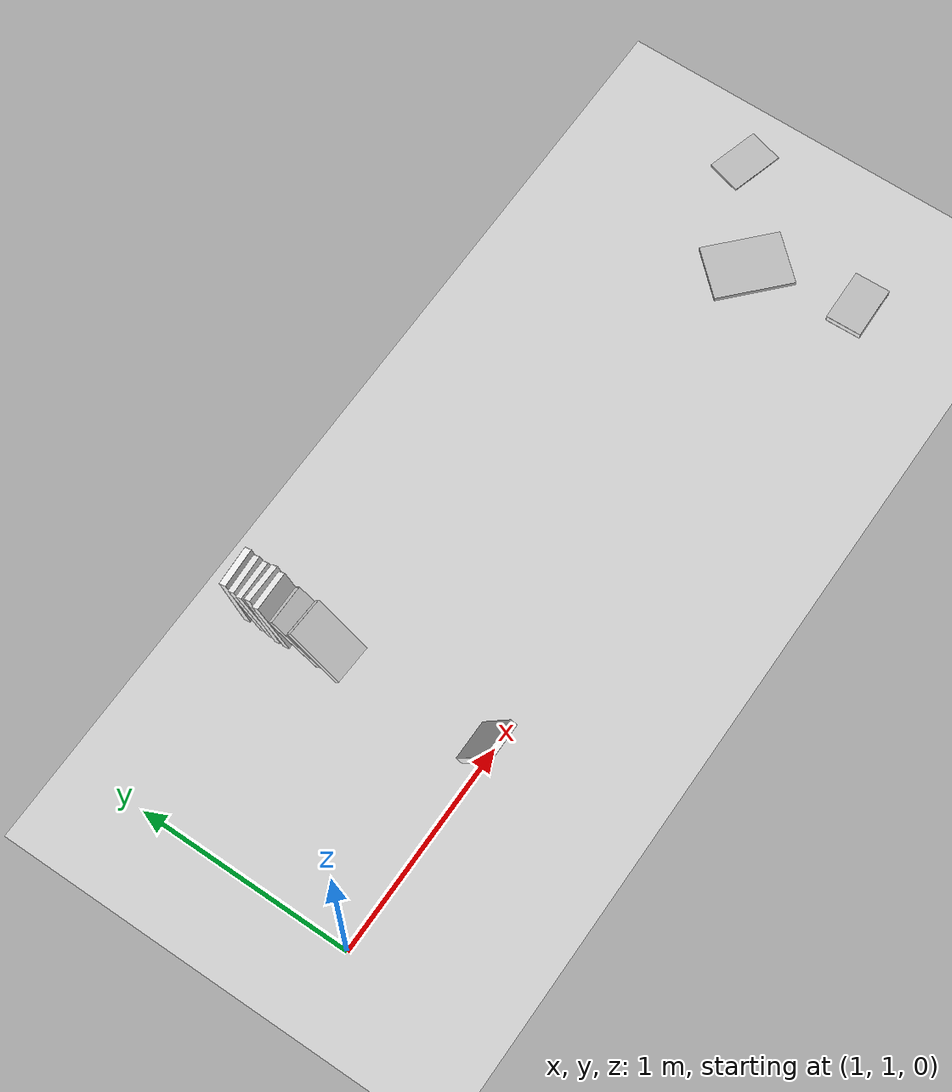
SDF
<sdf version="1.4">
 <world name="default">
  <model name="ground_plane">
   <static>1</static>
   <link name="link">
    <collision name="collision">
     <geometry><plane><normal>0 0 1</normal><size>100 100</size></plane></geometry>
     <surface><friction><ode><mu>1</mu><mu2>1</mu2></ode></friction></surface>
    </collision>
    <visual name="visual">
     <cast_shadows>0</cast_shadows>
     <geometry><plane><normal>0 0 1</normal><size>100 100</size></plane></geometry>
     <material>
      <script><uri>file://media/materials/scripts/gazebo.material</uri><name>Gazebo/Grey</name></script>
     </material>
    </visual>
    <velocity_decay><linear>0</linear><angular>0</angular></velocity_decay>
   </link>
  </model>
  <model name="book_10">
   <link name="cover">
    <pose>0 -0.000108 0.015405 0 -0 0</pose>
    <visual name="visual">
     <geometry><box><size>0.245 0.16 0.03</size></box></geometry>
     <material>
      <script>
       <uri>model://book_10/materials/scripts</uri>
       <uri>model://book_10/materials/textures</uri>
       <name>book_10</name>
      </script>
     </material>
    </visual>
    <collision name="collision"><geometry><box><size>0.245 0.16 0.03</size></box></geometry></collision>
   </link>
   <link name="page">
    <pose>0 0.000608 0.015405 0 -0 0</pose>
    <visual name="visual">
     <geometry><box><size>0.24502 0.15862 0.028</size></box></geometry>
     <material>
      <lighting>1</lighting>
      <ambient>1 1 1 1</ambient>
      <diffuse>1 1 1 1</diffuse>
      <specular>0.01 0.01 0.01 1</specular>
      <emissive>0 0 0 1</emissive>
      <shader type="vertex"><normal_map>__default__</normal_map></shader>
     </material>
    </visual>
    <collision name="collision"><geometry><box><size>0.245 0.16 0.03</size></box></geometry></collision>
   </link>
   <static>1</static>
   <pose>1.58252 1.72751 1.53136 -3.12764 1.25017 -1.50569</pose>
  </model>
  <model name="book_1">
   <link name="cover">
    <pose>0 -0.000108 0.015405 0 -0 0</pose>
    <visual name="visual">
     <geometry><box><size>0.245 0.16 0.03</size></box></geometry>
     <material>
      <script>
       <uri>model://book_1/materials/scripts</uri>
       <uri>model://book_1/materials/textures</uri>
       <name>book_1</name>
      </script>
     </material>
    </visual>
    <collision name="collision"><geometry><box><size>0.245 0.16 0.03</size></box></geometry></collision>
   </link>
   <link name="page">
    <pose>0 0.000608 0.015405 0 -0 0</pose>
    <visual name="visual">
     <geometry><box><size>0.24502 0.15862 0.028</size></box></geometry>
     <material>
      <lighting>1</lighting>
      <ambient>1 1 1 1</ambient>
      <diffuse>1 1 1 1</diffuse>
      <specular>0.01 0.01 0.01 1</specular>
      <emissive>0 0 0 1</emissive>
      <shader type="vertex"><normal_map>__default__</normal_map></shader>
     </material>
    </visual>
    <collision name="collision"><geometry><box><size>0.245 0.16 0.03</size></box></geometry></collision>
   </link>
   <static>1</static>
   <pose>1.57892 1.63737 1.52769 -3.11882 1.07703 -1.53154</pose>
  </model>
  <model name="book_11">
   <link name="cover">
    <pose>0 -0.000108 0.015405 0 -0 0</pose>
    <visual name="visual">
     <geometry><box><size>0.245 0.16 0.03</size></box></geometry>
     <material>
      <script>
       <uri>model://book_11/materials/scripts</uri>
       <uri>model://book_11/materials/textures</uri>
       <name>book_11</name>
      </script>
     </material>
    </visual>
    <collision name="collision"><geometry><box><size>0.245 0.16 0.03</size></box></geometry></collision>
   </link>
   <link name="page">
    <pose>0 0.000608 0.015405 0 -0 0</pose>
    <visual name="visual">
     <geometry><box><size>0.24502 0.15862 0.028</size></box></geometry>
     <material>
      <lighting>1</lighting>
      <ambient>1 1 1 1</ambient>
      <diffuse>1 1 1 1</diffuse>
      <specular>0.01 0.01 0.01 1</specular>
      <emissive>0 0 0 1</emissive>
      <shader type="vertex"><normal_map>__default__</normal_map></shader>
     </material>
    </visual>
    <collision name="collision"><geometry><box><size>0.245 0.16 0.03</size></box></geometry></collision>
   </link>
   <static>1</static>
   <pose>1.57867 1.56994 1.52807 -3.11726 1.11114 -1.52978</pose>
  </model>
  <model name="book_12">
   <link name="cover">
    <pose>0 -0.000108 0.015405 0 -0 0</pose>
    <visual name="visual">
     <geometry><box><size>0.245 0.16 0.03</size></box></geometry>
     <material>
      <script>
       <uri>model://book_12/materials/scripts</uri>
       <uri>model://book_12/materials/textures</uri>
       <name>book_12</name>
      </script>
     </material>
    </visual>
    <collision name="collision"><geometry><box><size>0.245 0.16 0.03</size></box></geometry></collision>
   </link>
   <link name="page">
    <pose>0 0.000608 0.015405 0 -0 0</pose>
    <visual name="visual">
     <geometry><box><size>0.24502 0.15862 0.028</size></box></geometry>
     <material>
      <lighting>1</lighting>
      <ambient>1 1 1 1</ambient>
      <diffuse>1 1 1 1</diffuse>
      <specular>0.01 0.01 0.01 1</specular>
      <emissive>0 0 0 1</emissive>
      <shader type="vertex"><normal_map>__default__</normal_map></shader>
     </material>
    </visual>
    <collision name="collision"><geometry><box><size>0.245 0.16 0.03</size></box></geometry></collision>
   </link>
   <static>1</static>
   <pose>1.5784 1.39365 1.50223 3.07983 0.578016 -1.63068</pose>
  </model>
  <model name="book_15">
   <link name="cover">
    <pose>0 -0.000108 0.015405 0 -0 0</pose>
    <visual name="visual">
     <geometry><box><size>0.245 0.16 0.03</size></box></geometry>
     <material>
      <script>
       <uri>model://book_15/materials/scripts</uri>
       <uri>model://book_15/materials/textures</uri>
       <name>book_15</name>
      </script>
     </material>
    </visual>
    <collision name="collision"><geometry><box><size>0.245 0.16 0.03</size></box></geometry></collision>
   </link>
   <link name="page">
    <pose>0 0.000608 0.015405 0 -0 0</pose>
    <visual name="visual">
     <geometry><box><size>0.24502 0.15862 0.028</size></box></geometry>
     <material>
      <lighting>1</lighting>
      <ambient>1 1 1 1</ambient>
      <diffuse>1 1 1 1</diffuse>
      <specular>0.01 0.01 0.01 1</specular>
      <emissive>0 0 0 1</emissive>
      <shader type="vertex"><normal_map>__default__</normal_map></shader>
     </material>
    </visual>
    <collision name="collision"><geometry><box><size>0.245 0.16 0.03</size></box></geometry></collision>
   </link>
   <static>1</static>
   <pose>1.58186 1.67602 1.52823 -3.12635 1.10761 -1.50686</pose>
  </model>
  <model name="book_16">
   <link name="cover">
    <pose>0 -0.000108 0.015405 0 -0 0</pose>
    <visual name="visual">
     <geometry><box><size>0.245 0.16 0.03</size></box></geometry>
     <material>
      <script>
       <uri>model://book_16/materials/scripts</uri>
       <uri>model://book_16/materials/textures</uri>
       <name>book_16</name>
      </script>
     </material>
    </visual>
    <collision name="collision"><geometry><box><size>0.245 0.16 0.03</size></box></geometry></collision>
   </link>
   <link name="page">
    <pose>0 0.000608 0.015405 0 -0 0</pose>
    <visual name="visual">
     <geometry><box><size>0.24502 0.15862 0.028</size></box></geometry>
     <material>
      <lighting>1</lighting>
      <ambient>1 1 1 1</ambient>
      <diffuse>1 1 1 1</diffuse>
      <specular>0.01 0.01 0.01 1</specular>
      <emissive>0 0 0 1</emissive>
      <shader type="vertex"><normal_map>__default__</normal_map></shader>
     </material>
    </visual>
    <collision name="collision"><geometry><box><size>0.245 0.16 0.03</size></box></geometry></collision>
   </link>
   <static>1</static>
   <pose>4.31939 0.767967 0.431684 0 0 -3.11812</pose>
  </model>
  <model name="book_17">
   <link name="cover">
    <pose>0 -0.000108 0.015405 0 -0 0</pose>
    <visual name="visual">
     <geometry><box><size>0.245 0.16 0.03</size></box></geometry>
     <material>
      <script>
       <uri>model://book_17/materials/scripts</uri>
       <uri>model://book_17/materials/textures</uri>
       <name>book_17</name>
      </script>
     </material>
    </visual>
    <collision name="collision"><geometry><box><size>0.245 0.16 0.03</size></box></geometry></collision>
   </link>
   <link name="page">
    <pose>0 0.000608 0.015405 0 -0 0</pose>
    <visual name="visual">
     <geometry><box><size>0.24502 0.15862 0.028</size></box></geometry>
     <material>
      <lighting>1</lighting>
      <ambient>1 1 1 1</ambient>
      <diffuse>1 1 1 1</diffuse>
      <specular>0.01 0.01 0.01 1</specular>
      <emissive>0 0 0 1</emissive>
      <shader type="vertex"><normal_map>__default__</normal_map></shader>
     </material>
    </visual>
    <collision name="collision"><geometry><box><size>0.245 0.16 0.03</size></box></geometry></collision>
   </link>
   <static>1</static>
   <pose>1.58009 1.60475 1.53124 3.06968 1.07706 -1.63479</pose>
  </model>
  <model name="book_18">
   <link name="cover">
    <pose>0 -0.000108 0.015405 0 -0 0</pose>
    <visual name="visual">
     <geometry><box><size>0.245 0.16 0.03</size></box></geometry>
     <material>
      <script>
       <uri>model://book_18/materials/scripts</uri>
       <uri>model://book_18/materials/textures</uri>
       <name>book_18</name>
      </script>
     </material>
    </visual>
    <collision name="collision"><geometry><box><size>0.245 0.16 0.03</size></box></geometry></collision>
   </link>
   <link name="page">
    <pose>0 0.000608 0.015405 0 -0 0</pose>
    <visual name="visual">
     <geometry><box><size>0.24502 0.15862 0.028</size></box></geometry>
     <material>
      <lighting>1</lighting>
      <ambient>1 1 1 1</ambient>
      <diffuse>1 1 1 1</diffuse>
      <specular>0.01 0.01 0.01 1</specular>
      <emissive>0 0 0 1</emissive>
      <shader type="vertex"><normal_map>__default__</normal_map></shader>
     </material>
    </visual>
    <collision name="collision"><geometry><box><size>0.245 0.16 0.03</size></box></geometry></collision>
   </link>
   <static>1</static>
   <pose>1.5794 0.721517 1.51174 -0.022284 1.06499 1.55051</pose>
  </model>
  <model name="book_2">
   <link name="cover">
    <pose>0 -0.000108 0.015405 0 -0 0</pose>
    <visual name="visual">
     <geometry><box><size>0.245 0.16 0.03</size></box></geometry>
     <material>
      <script>
       <uri>model://book_2/materials/scripts</uri>
       <uri>model://book_2/materials/textures</uri>
       <name>book_2</name>
      </script>
     </material>
    </visual>
    <collision name="collision"><geometry><box><size>0.245 0.16 0.03</size></box></geometry></collision>
   </link>
   <link name="page">
    <pose>0 0.000608 0.015405 0 -0 0</pose>
    <visual name="visual">
     <geometry><box><size>0.24502 0.15862 0.028</size></box></geometry>
     <material>
      <lighting>1</lighting>
      <ambient>1 1 1 1</ambient>
      <diffuse>1 1 1 1</diffuse>
      <specular>0.01 0.01 0.01 1</specular>
      <emissive>0 0 0 1</emissive>
      <shader type="vertex"><normal_map>__default__</normal_map></shader>
     </material>
    </visual>
    <collision name="collision"><geometry><box><size>0.245 0.16 0.03</size></box></geometry></collision>
   </link>
   <static>1</static>
   <pose>1.58038 1.4756 1.50855 -3.12301 0.677539 -1.55887</pose>
  </model>
  <model name="book_8">
   <link name="cover">
    <pose>0 -0.000108 0.005 0 -0 0</pose>
    <visual name="visual">
     <geometry><box><size>0.245 0.16 0.01</size></box></geometry>
     <material>
      <script>
       <uri>model://book_8/materials/scripts</uri>
       <uri>model://book_8/materials/textures</uri>
       <name>book_8</name>
      </script>
     </material>
    </visual>
    <collision name="collision"><geometry><box><size>0.245 0.16 0.01</size></box></geometry></collision>
   </link>
   <link name="page">
    <pose>0 0.000608 0.005 0 -0 0</pose>
    <visual name="visual">
     <geometry><box><size>0.24502 0.15862 0.008</size></box></geometry>
     <material>
      <lighting>1</lighting>
      <ambient>1 1 1 1</ambient>
      <diffuse>1 1 1 1</diffuse>
      <specular>0.01 0.01 0.01 1</specular>
      <emissive>0 0 0 1</emissive>
      <shader type="vertex"><normal_map>__default__</normal_map></shader>
     </material>
    </visual>
    <collision name="collision"><geometry><box><size>0.245 0.16 0.008</size></box></geometry></collision>
   </link>
   <static>1</static>
   <pose>4.65089 1.52824 0.431029 0 -0 2.87142</pose>
  </model>
  <model name="newspaper_3">
   <link name="link_0">
    <visual name="visual">
     <geometry><box><size>0.35 0.25 0.02</size></box></geometry>
     <material>
      <script>
       <uri>model://newspaper_3/materials/scripts</uri>
       <uri>model://newspaper_3/materials/textures</uri>
       <name>newspaper_3</name>
      </script>
     </material>
    </visual>
    <collision name="collision"><geometry><box><size>0.35 0.25 0.02</size></box></geometry></collision>
   </link>
   <static>1</static>
   <pose>4.22036 1.24525 0.44562 0 0 -0.747151</pose>
  </model>
 </world>
</sdf>
